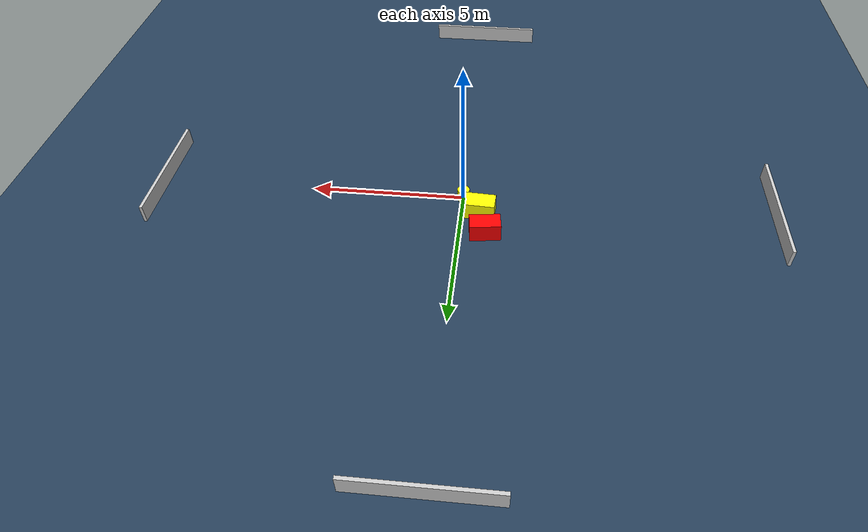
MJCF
<?xml version="1.0" ?>
<mujoco model="generated_environment">
  <option timestep="0.01" integrator="RK4" cone="elliptic"/>
  <default>
    <geom density="1"/>
  </default>
  <asset>
    <texture builtin="gradient" height="3072" name="skybox" rgb1="0.3 0.5 0.7" rgb2="0 0 0" type="skybox" width="512"/>
    <texture builtin="checker" height="300" name="groundplane" rgb1="0.2 0.3 0.4" rgb2="0.1 0.2 0.3" type="2d" width="300"/>
    <material name="groundplane" reflectance="0.2" texrepeat="5 5" texture="groundplane"/>
  </asset>
  <worldbody>
    <light dir="0 0 -1" directional="true" pos="0 0 1.5"/>
    <geom condim="3" friction="0.5 0.005 0.001" material="groundplane" name="floor" pos="0 0 0" size="0 0 0.05" type="plane"/>
    <body name="walls">
      <geom name="wall_1" condim="4" pos="-10.0 0.0 0.3" rgba="0.800000011920929 0.800000011920929 0.800000011920929 1.0" size="0.05 2.0 0.3" type="box"/>
      <geom name="wall_2" condim="4" pos="10.0 0.0 0.3" rgba="0.800000011920929 0.800000011920929 0.800000011920929 1.0" size="0.05 2.0 0.3" type="box"/>
      <geom name="wall_3" condim="4" pos="0.0 -10.0 0.3" rgba="0.800000011920929 0.800000011920929 0.800000011920929 1.0" size="2.0 0.05 0.3" type="box"/>
      <geom name="wall_4" condim="4" pos="0.0 10.0 0.3" rgba="0.800000011920929 0.800000011920929 0.800000011920929 1.0" size="2.0 0.05 0.3" type="box"/>
    </body>
    <body name="robot">
      <joint name="joint_x" type="slide" pos="0 0 0" axis="1 0 0"/>
      <joint name="joint_y" type="slide" pos="0 0 0" axis="0 1 0"/>
      <geom name="robot" type="cylinder" pos="0.0 0.0 0.2" size="0.2 0.2 0.0" mass="5.0" friction="1.0 0.005 0.0001" condim="4" rgba="1.0 1.0 0.0 1.0"/>
    </body>
    <body name="obstacle_1_movable">
      <geom name="obstacle_1_movable" condim="4" pos="-0.5479295682533885 0.6384255535378427 0.3" euler="0 0 176.98617064322914" friction="0.0 0.005 0.001" rgba="1.0 1.0 0.0 1.0" size="0.5250219288424891 0.2934944873044464 0.3" type="box" mass="0.1"/>
      <joint type="free"/>
    </body>
    <body name="obstacle_2_static">
      <geom name="obstacle_2_static" condim="4" pos="-0.811623188199484 1.5593677651381748 0.3" euler="0 0 187.15037786777987" friction="0.0 0.005 0.001" rgba="1.0 0.0 0.0 1.0" size="0.4862364529952398 0.2805169975194284 0.3" type="box"/>
    </body>
  </worldbody>
  <actuator>
    <motor name="actuator_x" joint="joint_x" gear="1" ctrlrange="-1 1"/>
    <motor name="actuator_y" joint="joint_y" gear="1" ctrlrange="-1 1"/>
  </actuator>
</mujoco>
